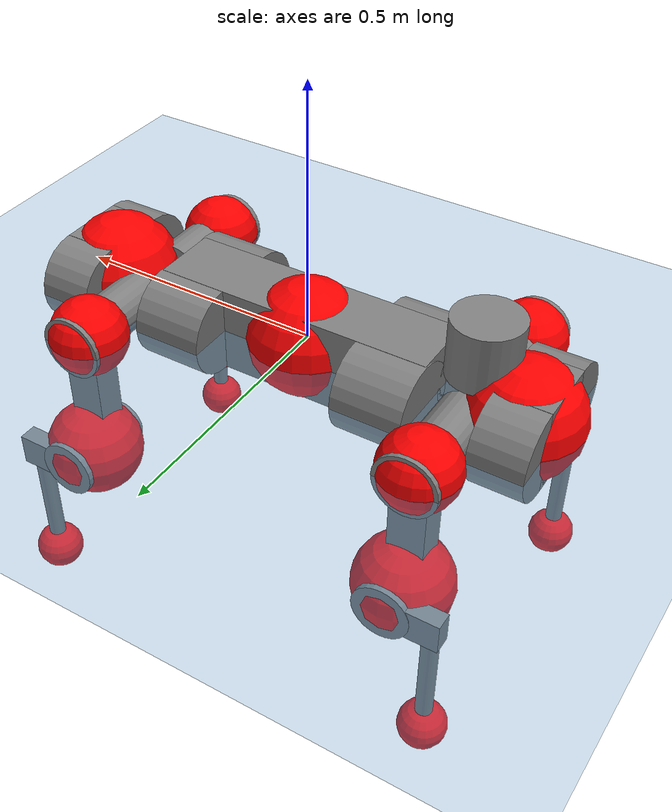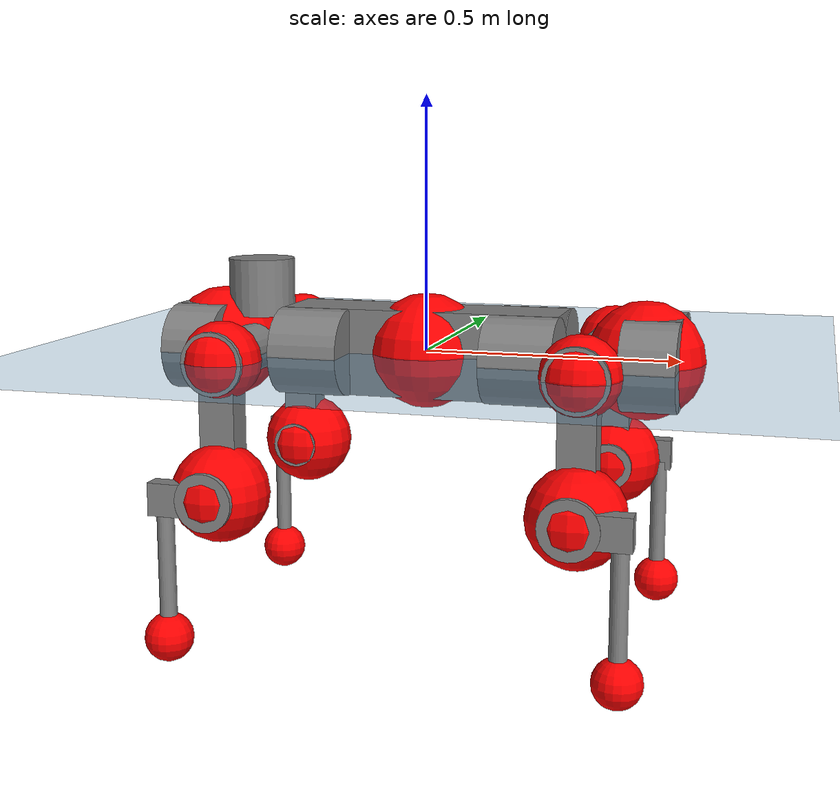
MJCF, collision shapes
<mujoco model="anymal_c">
  <compiler angle="radian" assetdir="assets" balanceinertia="true" inertiafromgeom="false"/>

  <option timestep="0.005" density="1.2" viscosity="2e-05"/>

  <size nkey="1"/>

  <visual>
    <quality shadowsize="8192"/>
    <map shadowclip="0.5"/>
  </visual>

  <default>
    <default class="/">
      <material specular="0" shininess="0.25"/>
      <geom contype="0" conaffinity="0" group="1" solref="-1000 -80"/>
      <site size="0.01 0.005 0.005" group="5"/>
      <general forcelimited="true" forcerange="-80 80" biastype="affine" gainprm="80" biasprm="0 -80 -2"/>
      <default class="anymal_c">
        <joint armature="0.01" damping="0.01" frictionloss="0.1"/>
        <default class="visual">
          <geom type="mesh" group="2"/>
          <default class="visual_zflip"/>
        </default>
        <default class="collision">
          <geom type="cylinder" group="3"/>
          <default class="foot">
            <geom size="0.03 0 0" type="sphere" condim="6" priority="1" friction="0.8 0.02 0.01" solimp="0.015 1 0.03"/>
          </default>
        </default>
      </default>
      <default class="reward_collision_sphere">
        <geom group="5" rgba="1 0 0 1"/>
      </default>
    </default>
  </default>

  <asset>
    <texture type="skybox" colorspace="auto" name="//unnamed_texture_0" builtin="gradient" rgb1="0.95 0.95 0.95" rgb2="0.95 0.95 0.95" width="100" height="600"/>
    <texture type="2d" colorspace="auto" name="texplane" builtin="checker" rgb1="0.345 0.575 0.748" rgb2="0.345 0.575 0.748" markrgb="1 1 1" width="512" height="512"/>
    <texture type="2d" colorspace="linear" name="base" file="base.png"/>
    <texture type="2d" colorspace="linear" name="top_shell" file="top_shell.png"/>
    <texture type="2d" colorspace="linear" name="bottom_shell" file="bottom_shell.png"/>
    <texture type="2d" colorspace="linear" name="remote" file="remote.png"/>
    <texture type="2d" colorspace="linear" name="hatch" file="hatch.png"/>
    <texture type="2d" colorspace="linear" name="handle" file="handle.png"/>
    <texture type="2d" colorspace="linear" name="face" file="face.png"/>
    <texture type="2d" colorspace="linear" name="battery" file="battery.png"/>
    <texture type="2d" colorspace="linear" name="lidar_cage" file="lidar_cage.png"/>
    <texture type="2d" colorspace="linear" name="depth_camera" file="depth_camera.png"/>
    <texture type="2d" colorspace="linear" name="wide_angle_camera" file="wide_angle_camera.png"/>
    <texture type="2d" colorspace="linear" name="lidar" file="lidar.png"/>
    <texture type="2d" colorspace="linear" name="drive" file="drive.png"/>
    <texture type="2d" colorspace="linear" name="hip_l" file="hip_l.png"/>
    <texture type="2d" colorspace="linear" name="shank_l" file="shank_l.png"/>
    <texture type="2d" colorspace="linear" name="foot" file="foot.png"/>
    <texture type="2d" colorspace="linear" name="thigh" file="thigh.png"/>
    <texture type="2d" colorspace="linear" name="shank_r" file="shank_r.png"/>
    <texture type="2d" colorspace="linear" name="hip_r" file="hip_r.png"/>
    <material name="MatPlane" class="/" texture="texplane" texuniform="true" texrepeat="2 2" specular="0.9" shininess="0.5"/>
    <material name="black_plastic" class="/" rgba="0.007 0.007 0.007 1"/>
    <material name="green" class="/" rgba="0.052 0.178 0.033 1"/>
    <material name="red" class="/" rgba="0.178 0.006 0.005 1"/>
    <material name="yellow" class="/" rgba="0.178 0.119 0.006 1"/>
    <material name="lwl" class="/" rgba="0.8 0.8 0.8 1"/>
    <material name="base" class="/" texture="base"/>
    <material name="top_shell" class="/" texture="top_shell"/>
    <material name="bottom_shell" class="/" texture="bottom_shell"/>
    <material name="hip_l" class="/" texture="hip_l"/>
    <material name="thigh" class="/" texture="thigh"/>
    <material name="shank_l" class="/" texture="shank_l"/>
    <material name="foot" class="/" texture="foot"/>
    <material name="hip_r" class="/" texture="hip_r"/>
    <material name="shank" class="/" texture="shank_r"/>
    <material name="hatch" class="/" texture="hatch"/>
    <material name="remote" class="/" texture="remote"/>
    <material name="handle" class="/" texture="handle"/>
    <material name="face" class="/" texture="face"/>
    <material name="depth_camera" class="/" texture="depth_camera"/>
    <material name="wide_angle_camera" class="/" texture="wide_angle_camera"/>
    <material name="battery" class="/" texture="battery"/>
    <material name="lidar_cage" class="/" texture="lidar_cage"/>
    <material name="lidar" class="/" texture="lidar"/>
    <material name="drive" class="/" texture="drive"/>
    <mesh name="base_0" class="/" file="base_0.obj"/>
    <mesh name="base_1" class="/" file="base_1.obj"/>
    <mesh name="base_2" class="/" file="base_2.obj"/>
    <mesh name="base_3" class="/" file="base_3.obj"/>
    <mesh name="base_4" class="/" file="base_4.obj"/>
    <mesh name="base_5" class="/" file="base_5.obj"/>
    <mesh name="top_shell" class="/" file="top_shell.obj"/>
    <mesh name="bottom_shell" class="/" file="bottom_shell.obj"/>
    <mesh name="remote" class="/" file="remote.obj"/>
    <mesh name="handle" class="/" file="handle.obj"/>
    <mesh name="face" class="/" file="face.obj"/>
    <mesh name="wide_angle_camera" class="/" file="wide_angle_camera.obj"/>
    <mesh name="depth_camera" class="/" file="depth_camera.obj"/>
    <mesh name="battery" class="/" file="battery.obj"/>
    <mesh name="lidar_cage" class="/" file="lidar_cage.obj"/>
    <mesh name="lidar" class="/" file="lidar.obj"/>
    <mesh name="drive" class="/" file="drive.obj"/>
    <mesh name="hip_l" class="/" file="hip_l.obj"/>
    <mesh name="thigh" class="/" file="thigh.obj"/>
    <mesh name="shank_l" class="/" file="shank_l.obj"/>
    <mesh name="foot" class="/" file="foot.obj"/>
    <mesh name="hip_r" class="/" file="hip_r.obj"/>
    <mesh name="hatch" class="/" file="hatch.obj"/>
    <mesh name="shank_r" class="/" file="shank_r.obj"/>
  </asset>

  <worldbody>
    <geom name="floor" class="/" size="100 100 0.125" type="plane" group="0" material="MatPlane"/>
    <light name="toplight_shadow" class="/" pos="0 0 5" dir="0.0990148 0.0990148 -0.990148" type="directional" ambient="0.04 0.04 0.04" diffuse="0.55 0.55 0.55" specular="0.12 0.12 0.12"/>
    <light name="toplight_fill" class="/" pos="0 0 5" dir="0.0990148 0.0990148 -0.990148" type="directional" castshadow="false" ambient="0.04 0.04 0.04" diffuse="0.3 0.3 0.3" specular="0.08 0.08 0.08"/>
    <body name="trunk" childclass="anymal_c" pos="0.000195723 -1.91244e-05 0.000567894" quat="1 -7.85141e-05 6.69841e-06 -1.4261e-05">
      <inertial pos="0.00151499 0.00125506 0.0383121" quat="0.501795 0.499038 0.499629 0.499534" mass="15.8354" diaginertia="0.518352 0.622455 0.114497"/>
      <joint name="//unnamed_joint_0" type="free" armature="0" damping="0" frictionloss="0"/>
      <geom name="//unnamed_geom_1" class="visual" material="green" mesh="base_0"/>
      <geom name="//unnamed_geom_2" class="visual" material="yellow" mesh="base_1"/>
      <geom name="//unnamed_geom_3" class="visual" material="red" mesh="base_2"/>
      <geom name="//unnamed_geom_4" class="visual" material="black_plastic" mesh="base_3"/>
      <geom name="//unnamed_geom_5" class="visual" material="lwl" mesh="base_4"/>
      <geom name="//unnamed_geom_6" class="visual" material="base" mesh="base_5"/>
      <geom name="trunk_1" class="collision" size="0.275687 0.0665452 0.0855581" type="box"/>
      <geom name="trunk_2" class="collision" size="0.0855581 0.0689218" pos="0.209192 0.070406 0" quat="0.707107 0 0.707107 0"/>
      <geom name="trunk_3" class="collision" size="0.0855581 0.0689218" pos="-0.209192 0.070406 0" quat="0.707107 0 0.707107 0"/>
      <geom name="trunk_4" class="collision" size="0.0855581 0.0689218" pos="0.209192 -0.070406 0" quat="0.707107 0 0.707107 0"/>
      <geom name="trunk_5" class="collision" size="0.0855581 0.0689218" pos="-0.209192 -0.070406 0" quat="0.707107 0 0.707107 0"/>
      <geom name="//unnamed_geom_12" class="visual" material="top_shell" mesh="top_shell"/>
      <geom name="//unnamed_geom_13" class="visual" material="bottom_shell" mesh="bottom_shell"/>
      <geom name="//unnamed_geom_14" class="visual" material="remote" mesh="remote"/>
      <geom name="//unnamed_geom_15" class="visual" material="handle" mesh="handle"/>
      <geom name="//unnamed_geom_16" class="visual" pos="0.398667 0 0" quat="1 0 0 0" material="face" mesh="face"/>
      <geom name="trunk_6" class="collision" size="0.0522855 0.0665452 0.0855581" pos="0.451566 0 0" type="box"/>
      <geom name="//unnamed_geom_18" class="collision" size="0.0855581 0.0522855" pos="0.451566 0.070406 0" quat="0.707107 0 0.707107 0"/>
      <geom name="//unnamed_geom_19" class="collision" size="0.0855581 0.0522855" pos="0.451566 -0.070406 0" quat="0.707107 0 0.707107 0"/>
      <geom name="//unnamed_geom_20" class="visual" pos="0.444013 0 -0.0252338" quat="0.965926 0 0.258819 0" material="depth_camera" mesh="depth_camera"/>
      <geom name="//unnamed_geom_21" class="visual" pos="0.493405 0 0.0132385" material="wide_angle_camera" mesh="wide_angle_camera"/>
      <geom name="//unnamed_geom_22" class="visual_zflip" pos="-0.398667 0 0" quat="0 0 0 1" material="face" mesh="face"/>
      <geom name="trunk_7" class="collision" size="0.0522855 0.0665452 0.0855581" pos="-0.451566 0 0" quat="0 0 0 1" type="box"/>
      <geom name="//unnamed_geom_24" class="collision" size="0.0855581 0.0522855" pos="-0.451566 -0.070406 0" quat="0 -0.707107 0 0.707107"/>
      <geom name="//unnamed_geom_25" class="collision" size="0.0855581 0.0522855" pos="-0.451566 0.070406 0" quat="0 -0.707107 0 0.707107"/>
      <geom name="//unnamed_geom_26" class="visual" pos="-0.444013 0 -0.0252338" quat="0 -0.258819 0 0.965926" material="depth_camera" mesh="depth_camera"/>
      <geom name="//unnamed_geom_27" class="visual_zflip" pos="-0.493405 0 0.0132385" quat="0 0 0 1" material="wide_angle_camera" mesh="wide_angle_camera"/>
      <geom name="//unnamed_geom_28" class="visual" material="battery" mesh="battery"/>
      <geom name="//unnamed_geom_29" class="visual" pos="0 0.0774776 0.0262787" quat="0.683013 -0.183013 0.183013 0.683013" material="depth_camera" mesh="depth_camera"/>
      <geom name="//unnamed_geom_30" class="visual" pos="0 -0.0774776 0.0262787" quat="0.683013 0.183013 0.183013 -0.683013" material="depth_camera" mesh="depth_camera"/>
      <geom name="//unnamed_geom_31" class="visual" pos="-0.350096 0 0.0649986" quat="1 0 0 0" material="lidar_cage" mesh="lidar_cage"/>
      <geom name="trunk_8" class="collision" size="0.0665452 0.0570387" pos="-0.350096 0 0.118059"/>
      <geom name="//unnamed_geom_33" class="visual" pos="-0.350096 1.72857e-05 0.125752" quat="0.707107 0 0 -0.707107" material="lidar" mesh="lidar"/>
      <geom name="//unnamed_geom_34" class="visual" pos="0.288445 0.10456 2.09531e-09" quat="0.258819 0.965926 0 0" material="drive" mesh="drive"/>
      <geom name="//unnamed_geom_35" class="visual" pos="0.288445 -0.10456 -2.09531e-09" quat="0.258819 -0.965926 0 0" material="drive" mesh="drive"/>
      <geom name="//unnamed_geom_36" class="visual" pos="-0.288445 0.10456 -2.09531e-09" quat="0 0 0.965926 -0.258819" material="drive" mesh="drive"/>
      <geom name="//unnamed_geom_37" class="visual" pos="-0.288445 -0.10456 2.09531e-09" quat="0 0 -0.965926 -0.258819" material="drive" mesh="drive"/>
      <geom name="//unnamed_geom_38" class="visual" pos="0.111569 0 0.0645564" quat="1 0 0 0" material="hatch" mesh="hatch"/>
      <geom name="//unnamed_geom_39" class="reward_collision_sphere" size="0.114077"/>
      <geom name="//unnamed_geom_40" class="reward_collision_sphere" size="0.114077" pos="0.432811 0 0"/>
      <geom name="//unnamed_geom_41" class="reward_collision_sphere" size="0.114077" pos="-0.432811 0 0"/>
      <site name="imu" pos="0.245181 0.021531 0.0327106" size="0.00950646"/>
      <camera name="track" pos="0 -2.0116 0" quat="0.707107 0.707107 0 0" mode="trackcom"/>
      <camera name="ego_camera" pos="0.432811 0 -0.0353734" quat="-0.5 -0.5 0.5 0.5"/>
      <body name="LF_HIP" pos="0.288074 0.108014 0.00235038" quat="0.258563 0.965994 0.000230655 -1.28998e-05">
        <inertial pos="0.0540082 -0.0155158 -0.00680528" quat="-0.129786 0.709848 -0.134895 0.679025" mass="2.30308" diaginertia="0.00477337 0.00476061 0.0017249"/>
        <joint name="LF_HAA" pos="0 0 0" axis="0.999992 0.00386077 0.000623125" range="-0.707649 0.544234" armature="0.00947508" damping="0" frictionloss="0.108079"/>
        <geom name="//unnamed_geom_42" class="visual" pos="0 0.000123258 -2.0245e-05" quat="0.258819 -0.965926 0 0" material="hip_l" mesh="hip_l"/>
        <geom name="//unnamed_geom_43" class="visual" pos="0.057612 -0.0703453 -0.0397154" quat="0.183013 -0.683013 0.683013 0.183013" material="drive" mesh="drive"/>
        <geom name="//unnamed_geom_44" class="collision" size="0.0475323 0.0665452" pos="0.057612 -0.0120292 -0.00610633" quat="-0.353553 -0.612372 0.612372 -0.353553"/>
        <body name="LF_THIGH" pos="0.056369 -0.0710635 -0.0369334" quat="0.182552 -0.683224 0.682924 0.183014">
          <inertial pos="0.0297509 -0.000492292 -0.21627" quat="0.994323 -0.00834871 -0.0763385 0.073652" mass="2.66256" diaginertia="0.0250351 0.0304492 0.00219765"/>
          <joint name="LF_HFE" pos="0 0 0" axis="0.999998 -0.000931122 -0.00182407" range="-3.19861 3.14075" armature="0.00866142" damping="0.0180048" frictionloss="0.095333"/>
          <geom name="//unnamed_geom_45" class="visual" pos="-0.00087539 -1.37941e-06 0" quat="0.707107 0 0 -0.707107" material="thigh" mesh="thigh"/>
          <geom name="//unnamed_geom_46" class="collision" size="0.061792 0.0380258" pos="0.0384721 0 0" quat="0.5 0.5 -0.5 -0.5"/>
          <geom name="//unnamed_geom_47" class="collision" size="0.0356492 0.0285194 0.13434" pos="0.0288541 0 -0.124969" quat="0.707107 0 0 -0.707107" type="box"/>
          <geom name="//unnamed_geom_48" class="visual" pos="0.0964688 0 -0.252035" quat="1 0 0 0" material="drive" mesh="drive"/>
          <geom name="//unnamed_geom_49" class="collision" size="0.0475323 0.0665452" pos="0.0291426 0 -0.252035" quat="0.707107 0 0.707107 0"/>
          <geom name="//unnamed_geom_50" class="reward_collision_sphere" size="0.0760517" pos="0.0240451 0 0"/>
          <body name="LF_SHANK" pos="0.0989346 -0.000294581 -0.252775" quat="1 0.000110468 -0.000117993 -5.68764e-05">
            <inertial pos="0.00671537 -0.0615212 -0.0709812" quat="0.993413 -0.112312 -0.00209612 -0.0226183" mass="0.509521" diaginertia="0.00843329 0.00959502 0.000613643"/>
            <joint name="LF_KFE" pos="0 0 0" axis="0.999972 -0.00315999 0.00685183" stiffness="0.000242966" range="-3.11474 3.19213" armature="0.00870814" damping="0.00225239" frictionloss="0.0909563"/>
            <geom name="//unnamed_geom_51" class="visual" pos="-0.000285446 -0.00152201 0" quat="0.707107 0 0 -0.707107" material="shank_l" mesh="shank_l"/>
            <geom name="LF_kfe_act" class="collision" size="0.0570387 0.0190129" pos="0.019236 0 0" quat="0.5 0.5 -0.5 -0.5"/>
            <geom name="//unnamed_geom_53" class="collision" size="0.0546612 0.0320843 0.0180623" pos="0.019236 -0.0578325 0" quat="0.5 0.5 -0.5 -0.5" type="box"/>
            <geom name="//unnamed_geom_54" class="visual" pos="0.0125516 -0.0889506 -0.298878" quat="0.382683 0 0 -0.92388" material="foot" mesh="foot"/>
            <geom name="LF_calf" class="collision" size="0.0166363 0.134281" pos="0.0125515 -0.0884602 -0.149439" quat="0.707107 0 0 -0.707107"/>
            <geom name="LF_foot" class="foot" size="0.0292548" pos="0.0125515 -0.0884602 -0.278981" quat="0.707107 0 0 -0.707107"/>
            <geom name="//unnamed_geom_57" class="reward_collision_sphere" size="0.0950646" pos="-0.0480901 0 0"/>
            <geom name="//unnamed_geom_58" class="reward_collision_sphere" size="0.0475323" pos="0.0125515 -0.0884602 -0.278981"/>
            <site name="LF_foot" class="foot" pos="0.0125515 -0.0884602 -0.278981" quat="0.707107 0 0 -0.707107" size="0.00950646"/>
          </body>
        </body>
      </body>
      <body name="RF_HIP" pos="0.286263 -0.103611 0.00266919" quat="0.259395 -0.965771 -0.000129397 8.04484e-05">
        <inertial pos="0.0519072 0.0157931 -0.00748503" quat="0.133516 0.679315 0.124827 0.71072" mass="2.29762" diaginertia="0.00473809 0.00497058 0.00173658"/>
        <joint name="RF_HAA" pos="0 0 0" axis="0.999936 0.00745094 -0.0085067" range="-0.482234 0.669634" armature="0.0103499" damping="0" frictionloss="0.106492"/>
        <geom name="//unnamed_geom_59" class="visual" pos="0 -0.000123257 -2.02449e-05" quat="0.258819 0.965926 0 0" material="hip_r" mesh="hip_r"/>
        <geom name="//unnamed_geom_60" class="visual" pos="0.057612 0.0703453 -0.0397154" quat="0.183013 0.683013 0.683013 -0.183013" material="drive" mesh="drive"/>
        <geom name="//unnamed_geom_61" class="collision" size="0.0475323 0.0665452" pos="0.057612 0.0120292 -0.00610633" quat="-0.353553 0.612372 0.612372 0.353553"/>
        <body name="RF_THIGH" pos="0.0569285 0.0704159 -0.0388674" quat="0.183837 0.683152 0.682799 -0.182464">
          <inertial pos="0.0269507 -0.000457736 -0.218959" quat="0.9918 -0.00232125 -0.0808821 0.098925" mass="2.68457" diaginertia="0.0244921 0.0301017 0.00233247"/>
          <joint name="RF_HFE" pos="0 0 0" axis="0.999984 0.0044777 -0.00330912" stiffness="0.00439529" range="-3.13807 3.08541" armature="0.00807236" damping="0.0178651" frictionloss="0.0875902"/>
          <geom name="//unnamed_geom_62" class="visual" pos="-0.00087539 -1.37941e-06 0" quat="0.707107 0 0 -0.707107" material="thigh" mesh="thigh"/>
          <geom name="//unnamed_geom_63" class="collision" size="0.061792 0.0380258" pos="0.0384721 0 0" quat="0.5 0.5 0.5 0.5"/>
          <geom name="//unnamed_geom_64" class="collision" size="0.0356492 0.0285194 0.13434" pos="0.0288541 0 -0.124969" quat="0.707107 0 0 0.707107" type="box"/>
          <geom name="//unnamed_geom_65" class="visual" pos="0.0964688 0 -0.252035" quat="1 0 0 0" material="drive" mesh="drive"/>
          <geom name="//unnamed_geom_66" class="collision" size="0.0475323 0.0665452" pos="0.0291426 0 -0.252035" quat="0.707107 0 0.707107 0"/>
          <geom name="//unnamed_geom_67" class="reward_collision_sphere" size="0.0760517" pos="0.0240451 0 0"/>
          <body name="RF_SHANK" pos="0.0963504 0.00164483 -0.252124" quat="1 0.000615183 -0.000264246 0.000218168">
            <inertial pos="0.00378564 0.0612432 -0.0695615" quat="0.992621 0.11781 -0.00545732 0.02818" mass="0.499005" diaginertia="0.008416 0.00956854 0.000584508"/>
            <joint name="RF_KFE" pos="0 0 0" axis="0.999973 -0.00453398 0.00575731" range="-3.14078 3.13182" armature="0.00949033" damping="0" frictionloss="0.0818059"/>
            <geom name="//unnamed_geom_68" class="visual" pos="-0.000285444 0.00152201 0" quat="0.707107 0 0 0.707107" material="shank" mesh="shank_r"/>
            <geom name="RF_kfe_act" class="collision" size="0.0570387 0.0190129" pos="0.019236 0 0" quat="0.5 0.5 0.5 0.5"/>
            <geom name="//unnamed_geom_70" class="collision" size="0.0546612 0.0320843 0.0180623" pos="0.019236 0.0578325 0" quat="0.5 0.5 0.5 0.5" type="box"/>
            <geom name="//unnamed_geom_71" class="visual" pos="0.0125515 0.0889506 -0.298878" quat="0.382683 0 0 0.92388" material="foot" mesh="foot"/>
            <geom name="RF_calf" class="collision" size="0.0166363 0.134281" pos="0.0125515 0.0884602 -0.149439" quat="0.707107 0 0 0.707107"/>
            <geom name="RF_foot" class="foot" size="0.0279405" pos="0.0125515 0.0884602 -0.278981" quat="0.707107 0 0 0.707107"/>
            <geom name="//unnamed_geom_74" class="reward_collision_sphere" size="0.0950646" pos="-0.0480901 0 0"/>
            <geom name="//unnamed_geom_75" class="reward_collision_sphere" size="0.0475323" pos="0.0125515 0.0884602 -0.278981"/>
            <site name="RF_foot" class="foot" pos="0.0125515 0.0884602 -0.278981" quat="0.707107 0 0 0.707107" size="0.00950646"/>
          </body>
        </body>
      </body>
      <body name="LH_HIP" pos="-0.288097 0.102801 0.00235291" quat="-0.000571131 0.000730922 0.965627 -0.25993">
        <inertial pos="0.0523462 0.0147872 -0.00673244" quat="0.130802 0.68072 0.140253 0.706994" mass="2.3127" diaginertia="0.00450022 0.00506385 0.00168393"/>
        <joint name="LH_HAA" pos="0 0 0" axis="0.999988 0.0020126 0.00450599" range="-0.508963 0.727056" armature="0.0100323" damping="0.000168069" frictionloss="0.0929744"/>
        <geom name="//unnamed_geom_76" class="visual" pos="0 -0.000123257 -2.02449e-05" quat="-0.258819 -0.965926 0 0" material="hip_r" mesh="hip_r"/>
        <geom name="//unnamed_geom_77" class="visual" pos="0.057612 0.0703453 -0.0397154" quat="0.183013 0.683013 0.683013 -0.183013" material="drive" mesh="drive"/>
        <geom name="//unnamed_geom_78" class="collision" size="0.0475323 0.0665452" pos="0.057612 0.0120292 -0.00610633" quat="-0.353553 0.612372 0.612372 0.353553"/>
        <body name="LH_THIGH" pos="0.057415 0.0719739 -0.0396886" quat="0.183236 0.683446 0.682761 -0.182109">
          <inertial pos="0.0285252 -0.00204271 -0.216134" quat="0.992778 -0.00508722 -0.0807068 0.0886163" mass="2.61786" diaginertia="0.0244664 0.0303693 0.00228152"/>
          <joint name="LH_HFE" pos="0 0 0" axis="0.999994 -0.00314553 -0.00166165" stiffness="0.0110862" range="-3.19 3.12138" armature="0.00901751" damping="0.0143108" frictionloss="0.108342"/>
          <geom name="//unnamed_geom_79" class="visual" pos="-0.00087539 -1.37941e-06 0" quat="0.707107 0 0 -0.707107" material="thigh" mesh="thigh"/>
          <geom name="//unnamed_geom_80" class="collision" size="0.061792 0.0380258" pos="0.0384721 0 0" quat="0.5 0.5 -0.5 -0.5"/>
          <geom name="//unnamed_geom_81" class="collision" size="0.0356492 0.0285194 0.13434" pos="0.0288541 0 -0.124969" quat="0.707107 0 0 -0.707107" type="box"/>
          <geom name="//unnamed_geom_82" class="visual" pos="0.0964688 0 -0.252035" quat="1 0 0 0" material="drive" mesh="drive"/>
          <geom name="//unnamed_geom_83" class="collision" size="0.0475323 0.0665452" pos="0.0291426 0 -0.252035" quat="0.707107 0 0.707107 0"/>
          <geom name="//unnamed_geom_84" class="reward_collision_sphere" size="0.0760517" pos="0.0240451 0 0"/>
          <body name="LH_SHANK" pos="0.0941563 -0.00209053 -0.252187" quat="1 0.000597259 -0.000141517 0.000562983">
            <inertial pos="0.00560911 0.0636962 -0.0704527" quat="0.992735 0.11786 -0.000800561 0.0241862" mass="0.486697" diaginertia="0.00819628 0.00894137 0.000610002"/>
            <joint name="LH_KFE" pos="0 0 0" axis="0.999983 -0.00462401 -0.00348384" range="-3.13267 3.16836" armature="0.00966932" damping="0.0132575" frictionloss="0.0931135"/>
            <geom name="//unnamed_geom_85" class="visual" pos="-0.000285444 0.00152201 0" quat="-0.707107 0 0 -0.707107" material="shank" mesh="shank_r"/>
            <geom name="LH_kfe_act" class="collision" size="0.0570387 0.0190129" pos="0.019236 0 0" quat="0.5 0.5 -0.5 -0.5"/>
            <geom name="//unnamed_geom_87" class="collision" size="0.0546612 0.0320843 0.0180623" pos="0.019236 0.0578325 0" quat="0.5 0.5 -0.5 -0.5" type="box"/>
            <geom name="//unnamed_geom_88" class="visual" pos="0.0125515 0.0889506 -0.298878" quat="-0.382683 0 0 -0.92388" material="foot" mesh="foot"/>
            <geom name="LH_calf" class="collision" size="0.0166363 0.134281" pos="0.0125515 0.0884602 -0.149439" quat="0.707107 0 0 -0.707107"/>
            <geom name="LH_foot" class="foot" size="0.0317235" pos="0.0125515 0.0884602 -0.278981" quat="0.707107 0 0 -0.707107"/>
            <geom name="//unnamed_geom_91" class="reward_collision_sphere" size="0.0950646" pos="-0.0480901 0 0"/>
            <geom name="//unnamed_geom_92" class="reward_collision_sphere" size="0.0475323" pos="0.0125515 0.0884602 -0.278981"/>
            <site name="LH_foot" class="foot" pos="0.0125515 0.0884602 -0.278981" quat="0.707107 0 0 -0.707107" size="0.00950646"/>
          </body>
        </body>
      </body>
      <body name="RH_HIP" pos="-0.289673 -0.105048 0.000834508" quat="4.33866e-05 0.00014228 -0.965944 -0.258753">
        <inertial pos="0.053054 -0.0180028 -0.00735083" quat="-0.128564 0.709113 -0.136697 0.679664" mass="2.41676" diaginertia="0.00478309 0.0049692 0.00182754"/>
        <joint name="RH_HAA" pos="0 0 0" axis="0.999976 0.00687411 0.000651043" range="-0.780965 0.497265" armature="0.00944641" damping="0.010696" frictionloss="0.0892583"/>
        <geom name="//unnamed_geom_93" class="visual" pos="0 0.000123258 -2.0245e-05" quat="-0.258819 0.965926 0 0" material="hip_l" mesh="hip_l"/>
        <geom name="//unnamed_geom_94" class="visual" pos="0.057612 -0.0703453 -0.0397154" quat="-0.183013 0.683013 -0.683013 -0.183013" material="drive" mesh="drive"/>
        <geom name="//unnamed_geom_95" class="collision" size="0.0475323 0.0665452" pos="0.057612 -0.0120292 -0.00610633" quat="0.353553 0.612372 -0.612372 0.353553"/>
        <body name="RH_THIGH" pos="0.0575084 -0.0721408 -0.0384503" quat="-0.182862 0.683333 -0.682758 -0.182919">
          <inertial pos="0.0326986 -0.00282901 -0.217913" quat="0.992905 -0.00778877 -0.089859 0.0774934" mass="2.59331" diaginertia="0.0244636 0.030049 0.00224353"/>
          <joint name="RH_HFE" pos="0 0 0" axis="0.999922 0.00320309 0.0120828" range="-3.15627 3.10946" armature="0.00934336" damping="0" frictionloss="0.085609"/>
          <geom name="//unnamed_geom_96" class="visual" pos="-0.00087539 -1.37941e-06 0" quat="0.707107 0 0 -0.707107" material="thigh" mesh="thigh"/>
          <geom name="//unnamed_geom_97" class="collision" size="0.061792 0.0380258" pos="0.0384721 0 0" quat="0.5 0.5 0.5 0.5"/>
          <geom name="//unnamed_geom_98" class="collision" size="0.0356492 0.0285194 0.13434" pos="0.0288541 0 -0.124969" quat="0.707107 0 0 0.707107" type="box"/>
          <geom name="//unnamed_geom_99" class="visual" pos="0.0964688 0 -0.252035" quat="1 0 0 0" material="drive" mesh="drive"/>
          <geom name="//unnamed_geom_100" class="collision" size="0.0475323 0.0665452" pos="0.0291426 0 -0.252035" quat="0.707107 0 0.707107 0"/>
          <geom name="//unnamed_geom_101" class="reward_collision_sphere" size="0.0760517" pos="0.0240451 0 0"/>
          <body name="RH_SHANK" pos="0.096952 0.002166 -0.253261" quat="1 -0.000588337 0.000144686 -0.000359839">
            <inertial pos="0.00788939 -0.0613001 -0.0708716" quat="0.992725 -0.117665 -0.00125069 -0.0254959" mass="0.513654" diaginertia="0.00854955 0.0101502 0.000623781"/>
            <joint name="RH_KFE" pos="0 0 0" axis="0.999986 -0.00465838 -0.00255246" range="-3.11572 3.10013" armature="0.00937846" damping="0.00397709" frictionloss="0.0851419"/>
            <geom name="//unnamed_geom_102" class="visual" pos="-0.000285446 -0.00152201 0" quat="0.707107 0 0 -0.707107" material="shank_l" mesh="shank_l"/>
            <geom name="RH_kfe_act" class="collision" size="0.0570387 0.0190129" pos="0.019236 0 0" quat="0.5 0.5 0.5 0.5"/>
            <geom name="//unnamed_geom_104" class="collision" size="0.0546612 0.0320843 0.0180623" pos="0.019236 -0.0578325 0" quat="0.5 0.5 0.5 0.5" type="box"/>
            <geom name="//unnamed_geom_105" class="visual" pos="0.0125516 -0.0889506 -0.298878" quat="0.382683 0 0 -0.92388" material="foot" mesh="foot"/>
            <geom name="RH_calf" class="collision" size="0.0166363 0.134281" pos="0.0125515 -0.0884602 -0.149439" quat="0.707107 0 0 0.707107"/>
            <geom name="RH_foot" class="foot" size="0.0222266" pos="0.0125515 -0.0884602 -0.278981" quat="0.707107 0 0 0.707107"/>
            <geom name="//unnamed_geom_108" class="reward_collision_sphere" size="0.0950646" pos="-0.0480901 0 0"/>
            <geom name="//unnamed_geom_109" class="reward_collision_sphere" size="0.0475323" pos="0.0125515 -0.0884602 -0.278981"/>
            <site name="RH_foot" class="foot" pos="0.0125515 -0.0884602 -0.278981" quat="0.707107 0 0 0.707107" size="0.00950646"/>
          </body>
        </body>
      </body>
    </body>
  </worldbody>

  <contact>
    <pair class="/" geom1="floor" geom2="LF_foot" name="//unnamed_contact_0"/>
    <pair class="/" geom1="floor" geom2="RF_foot" name="//unnamed_contact_1"/>
    <pair class="/" geom1="floor" geom2="LH_foot" name="//unnamed_contact_2"/>
    <pair class="/" geom1="floor" geom2="RH_foot" name="//unnamed_contact_3"/>
  </contact>

  <actuator>
    <general name="LF_HAA" class="/" joint="LF_HAA" forcerange="-77.6576 77.6576" gainprm="77.4415" biasprm="0 -77.4415 -1.88919"/>
    <general name="LF_HFE" class="/" joint="LF_HFE" forcerange="-80.2782 80.2782" gainprm="77.4415" biasprm="0 -77.4415 -1.88919"/>
    <general name="LF_KFE" class="/" joint="LF_KFE" forcerange="-83.7829 83.7829" gainprm="77.4415" biasprm="0 -77.4415 -1.88919"/>
    <general name="RF_HAA" class="/" joint="RF_HAA" forcerange="-75.0192 75.0192" gainprm="77.4415" biasprm="0 -77.4415 -1.88919"/>
    <general name="RF_HFE" class="/" joint="RF_HFE" forcerange="-85.6947 85.6947" gainprm="77.4415" biasprm="0 -77.4415 -1.88919"/>
    <general name="RF_KFE" class="/" joint="RF_KFE" forcerange="-77.3898 77.3898" gainprm="77.4415" biasprm="0 -77.4415 -1.88919"/>
    <general name="LH_HAA" class="/" joint="LH_HAA" forcerange="-77.9368 77.9368" gainprm="77.4415" biasprm="0 -77.4415 -1.88919"/>
    <general name="LH_HFE" class="/" joint="LH_HFE" forcerange="-77.4623 77.4623" gainprm="77.4415" biasprm="0 -77.4415 -1.88919"/>
    <general name="LH_KFE" class="/" joint="LH_KFE" forcerange="-77.6749 77.6749" gainprm="77.4415" biasprm="0 -77.4415 -1.88919"/>
    <general name="RH_HAA" class="/" joint="RH_HAA" forcerange="-76.113 76.113" gainprm="77.4415" biasprm="0 -77.4415 -1.88919"/>
    <general name="RH_HFE" class="/" joint="RH_HFE" forcerange="-69.6087 69.6087" gainprm="77.4415" biasprm="0 -77.4415 -1.88919"/>
    <general name="RH_KFE" class="/" joint="RH_KFE" forcerange="-83.7066 83.7066" gainprm="77.4415" biasprm="0 -77.4415 -1.88919"/>
  </actuator>

  <sensor>
    <gyro site="imu" name="imu_angular_velocity"/>
    <velocimeter site="imu" name="imu_linear_velocity"/>
    <framelinvel objtype="site" objname="LF_foot" name="LF_foot_global_linear_velocity"/>
    <framelinvel objtype="site" objname="RF_foot" name="RF_foot_global_linear_velocity"/>
    <framelinvel objtype="site" objname="LH_foot" name="LH_foot_global_linear_velocity"/>
    <framelinvel objtype="site" objname="RH_foot" name="RH_foot_global_linear_velocity"/>
  </sensor>

  <keyframe>
    <key name="home" qpos="0 0 0.55 1 0 0 0 0 0.4 -0.8 0 -0.4 0.8 0 -0.4 0.8 0 0.4 -0.8"/>
  </keyframe>
</mujoco>
